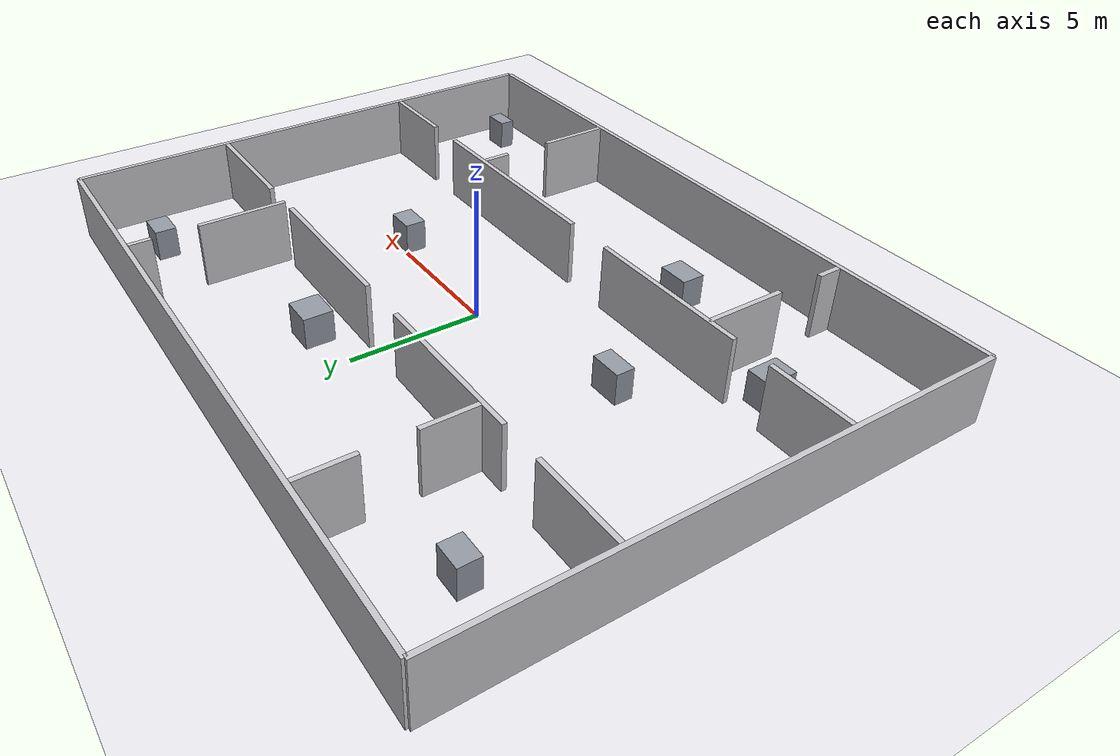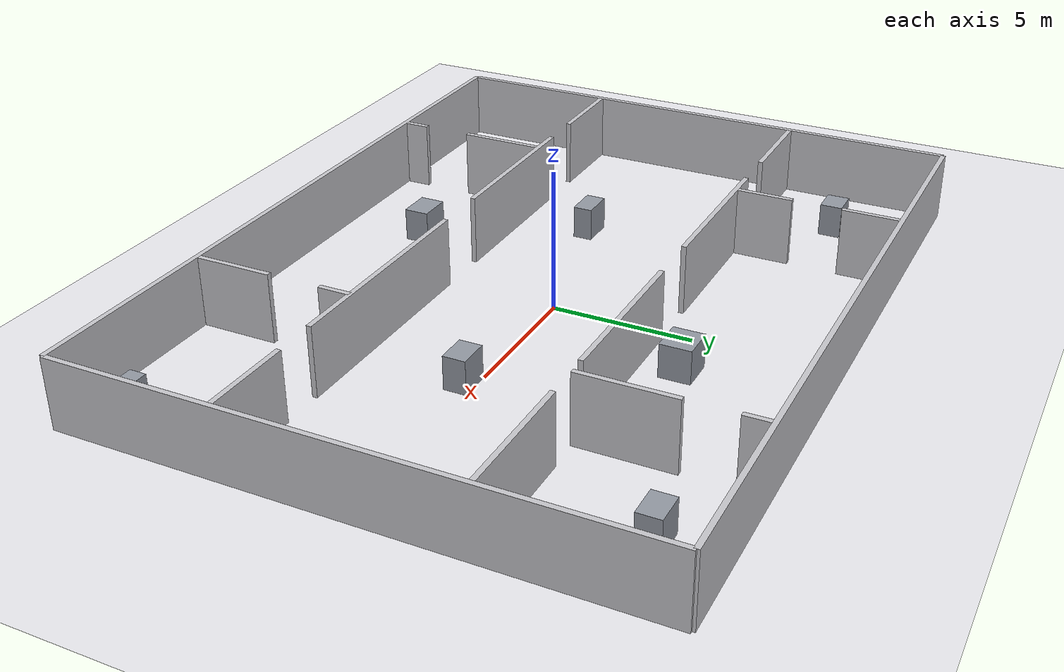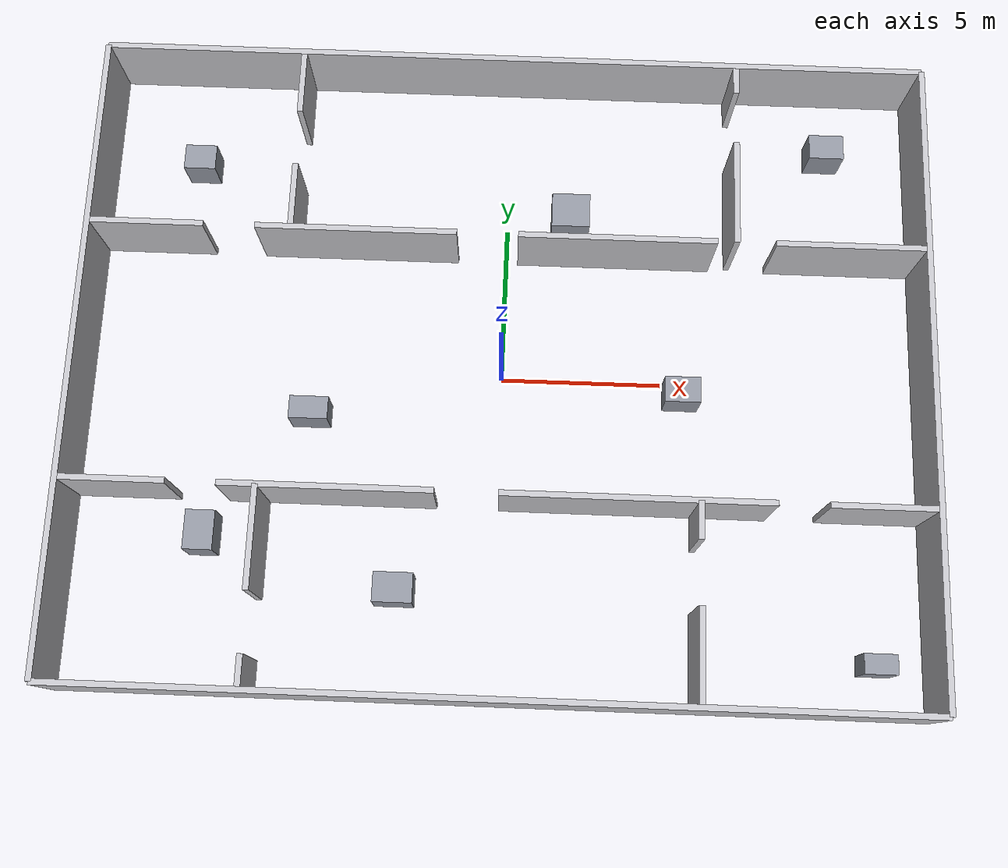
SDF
<?xml version="1.0"?>
<sdf version="1.9"><world name="new_room_world">
<plugin filename="gz-sim-physics-system" name="gz::sim::systems::Physics"/><plugin filename="gz-sim-user-commands-system" name="gz::sim::systems::UserCommands"/><plugin filename="gz-sim-scene-broadcaster-system" name="gz::sim::systems::SceneBroadcaster"/><plugin filename="gz-sim-sensors-system" name="gz::sim::systems::Sensors"><render_engine>ogre2</render_engine></plugin><plugin filename="gz-sim-imu-system" name="gz::sim::systems::Imu"/>
<physics name="new_room_realtime" type="ignored"><max_step_size>0.001</max_step_size><real_time_factor>1</real_time_factor></physics><gravity>0 0 -9.8</gravity><scene><ambient>0.85 0.85 0.87 1</ambient><background>0.68 0.68 0.71 1</background><shadows>false</shadows></scene><light name="sun" type="directional"><cast_shadows>false</cast_shadows><pose>0 0 10 0 0 0</pose><diffuse>0.95 0.95 0.95 1</diffuse><direction>-0.3 0.2 -1</direction></light>
<model name="new_room_ground"><static>true</static><link name="ground_link"><collision name="ground_collision"><geometry><plane><normal>0 0 1</normal><size>40 32</size></plane></geometry></collision><visual name="ground_visual"><geometry><plane><normal>0 0 1</normal><size>40 32</size></plane></geometry><material><ambient>0.92 0.92 0.94 1</ambient><diffuse>0.92 0.92 0.94 1</diffuse></material></visual></link></model>
<model name="mini_hospital_structure"><static>true</static><link name="structure">
<collision name="mx048_c000"><pose>0 10 1.25 0 0 0</pose><geometry><box><size>26 0.18 2.5</size></box></geometry></collision><visual name="mx048_v000"><pose>0 10 1.25 0 0 0</pose><geometry><box><size>26 0.18 2.5</size></box></geometry><material><ambient>0.78 0.78 0.80 1</ambient><diffuse>0.78 0.78 0.80 1</diffuse></material></visual>
<collision name="mx048_c001"><pose>0 -10 1.25 0 0 0</pose><geometry><box><size>26 0.18 2.5</size></box></geometry></collision><visual name="mx048_v001"><pose>0 -10 1.25 0 0 0</pose><geometry><box><size>26 0.18 2.5</size></box></geometry><material><ambient>0.78 0.78 0.80 1</ambient><diffuse>0.78 0.78 0.80 1</diffuse></material></visual>
<collision name="mx048_c002"><pose>-13 0 1.25 0 0 0</pose><geometry><box><size>0.18 20 2.5</size></box></geometry></collision><visual name="mx048_v002"><pose>-13 0 1.25 0 0 0</pose><geometry><box><size>0.18 20 2.5</size></box></geometry><material><ambient>0.78 0.78 0.80 1</ambient><diffuse>0.78 0.78 0.80 1</diffuse></material></visual>
<collision name="mx048_c003"><pose>13 0 1.25 0 0 0</pose><geometry><box><size>0.18 20 2.5</size></box></geometry></collision><visual name="mx048_v003"><pose>13 0 1.25 0 0 0</pose><geometry><box><size>0.18 20 2.5</size></box></geometry><material><ambient>0.78 0.78 0.80 1</ambient><diffuse>0.78 0.78 0.80 1</diffuse></material></visual>
<collision name="mx048_c004"><pose>-11.155 4 1.25 0 0 0</pose><geometry><box><size>3.51 0.18 2.5</size></box></geometry></collision><visual name="mx048_v004"><pose>-11.155 4 1.25 0 0 0</pose><geometry><box><size>3.51 0.18 2.5</size></box></geometry><material><ambient>0.78 0.78 0.80 1</ambient><diffuse>0.78 0.78 0.80 1</diffuse></material></visual>
<collision name="mx048_c005"><pose>-4.675 4 1.25 0 0 0</pose><geometry><box><size>6.25 0.18 2.5</size></box></geometry></collision><visual name="mx048_v005"><pose>-4.675 4 1.25 0 0 0</pose><geometry><box><size>6.25 0.18 2.5</size></box></geometry><material><ambient>0.78 0.78 0.80 1</ambient><diffuse>0.78 0.78 0.80 1</diffuse></material></visual>
<collision name="mx048_c006"><pose>3.425 4 1.25 0 0 0</pose><geometry><box><size>6.15 0.18 2.5</size></box></geometry></collision><visual name="mx048_v006"><pose>3.425 4 1.25 0 0 0</pose><geometry><box><size>6.15 0.18 2.5</size></box></geometry><material><ambient>0.78 0.78 0.80 1</ambient><diffuse>0.78 0.78 0.80 1</diffuse></material></visual>
<collision name="mx048_c007"><pose>10.605 4 1.25 0 0 0</pose><geometry><box><size>4.61 0.18 2.5</size></box></geometry></collision><visual name="mx048_v007"><pose>10.605 4 1.25 0 0 0</pose><geometry><box><size>4.61 0.18 2.5</size></box></geometry><material><ambient>0.78 0.78 0.80 1</ambient><diffuse>0.78 0.78 0.80 1</diffuse></material></visual>
<collision name="mx048_c008"><pose>-11.33 -4.1 1.25 0 0 0</pose><geometry><box><size>3.16 0.18 2.5</size></box></geometry></collision><visual name="mx048_v008"><pose>-11.33 -4.1 1.25 0 0 0</pose><geometry><box><size>3.16 0.18 2.5</size></box></geometry><material><ambient>0.78 0.78 0.80 1</ambient><diffuse>0.78 0.78 0.80 1</diffuse></material></visual>
<collision name="mx048_c009"><pose>-5.05 -4.1 1.25 0 0 0</pose><geometry><box><size>6.4 0.18 2.5</size></box></geometry></collision><visual name="mx048_v009"><pose>-5.05 -4.1 1.25 0 0 0</pose><geometry><box><size>6.4 0.18 2.5</size></box></geometry><material><ambient>0.78 0.78 0.80 1</ambient><diffuse>0.78 0.78 0.80 1</diffuse></material></visual>
<collision name="mx048_c010"><pose>4.15 -4.1 1.25 0 0 0</pose><geometry><box><size>8.2 0.18 2.5</size></box></geometry></collision><visual name="mx048_v010"><pose>4.15 -4.1 1.25 0 0 0</pose><geometry><box><size>8.2 0.18 2.5</size></box></geometry><material><ambient>0.78 0.78 0.80 1</ambient><diffuse>0.78 0.78 0.80 1</diffuse></material></visual>
<collision name="mx048_c011"><pose>11.33 -4.1 1.25 0 0 0</pose><geometry><box><size>3.16 0.18 2.5</size></box></geometry></collision><visual name="mx048_v011"><pose>11.33 -4.1 1.25 0 0 0</pose><geometry><box><size>3.16 0.18 2.5</size></box></geometry><material><ambient>0.78 0.78 0.80 1</ambient><diffuse>0.78 0.78 0.80 1</diffuse></material></visual>
<collision name="mx048_c012"><pose>-6.7 5.05 1.25 0 0 0</pose><geometry><box><size>0.18 2.1 2.5</size></box></geometry></collision><visual name="mx048_v012"><pose>-6.7 5.05 1.25 0 0 0</pose><geometry><box><size>0.18 2.1 2.5</size></box></geometry><material><ambient>0.78 0.78 0.80 1</ambient><diffuse>0.78 0.78 0.80 1</diffuse></material></visual>
<collision name="mx048_c013"><pose>-6.7 8.905 1.25 0 0 0</pose><geometry><box><size>0.18 2.01 2.5</size></box></geometry></collision><visual name="mx048_v013"><pose>-6.7 8.905 1.25 0 0 0</pose><geometry><box><size>0.18 2.01 2.5</size></box></geometry><material><ambient>0.78 0.78 0.80 1</ambient><diffuse>0.78 0.78 0.80 1</diffuse></material></visual>
<collision name="mx048_c014"><pose>7.1 5.675 1.25 0 0 0</pose><geometry><box><size>0.18 3.35 2.5</size></box></geometry></collision><visual name="mx048_v014"><pose>7.1 5.675 1.25 0 0 0</pose><geometry><box><size>0.18 3.35 2.5</size></box></geometry><material><ambient>0.78 0.78 0.80 1</ambient><diffuse>0.78 0.78 0.80 1</diffuse></material></visual>
<collision name="mx048_c015"><pose>7.1 9.48 1.25 0 0 0</pose><geometry><box><size>0.18 0.86 2.5</size></box></geometry></collision><visual name="mx048_v015"><pose>7.1 9.48 1.25 0 0 0</pose><geometry><box><size>0.18 0.86 2.5</size></box></geometry><material><ambient>0.78 0.78 0.80 1</ambient><diffuse>0.78 0.78 0.80 1</diffuse></material></visual>
<collision name="mx048_c016"><pose>-7.1 -9.455 1.25 0 0 0</pose><geometry><box><size>0.18 0.91 2.5</size></box></geometry></collision><visual name="mx048_v016"><pose>-7.1 -9.455 1.25 0 0 0</pose><geometry><box><size>0.18 0.91 2.5</size></box></geometry><material><ambient>0.78 0.78 0.80 1</ambient><diffuse>0.78 0.78 0.80 1</diffuse></material></visual>
<collision name="mx048_c017"><pose>-7.1 -5.65 1.25 0 0 0</pose><geometry><box><size>0.18 3.1 2.5</size></box></geometry></collision><visual name="mx048_v017"><pose>-7.1 -5.65 1.25 0 0 0</pose><geometry><box><size>0.18 3.1 2.5</size></box></geometry><material><ambient>0.78 0.78 0.80 1</ambient><diffuse>0.78 0.78 0.80 1</diffuse></material></visual>
<collision name="mx048_c018"><pose>6 -8.53 1.25 0 0 0</pose><geometry><box><size>0.18 2.76 2.5</size></box></geometry></collision><visual name="mx048_v018"><pose>6 -8.53 1.25 0 0 0</pose><geometry><box><size>0.18 2.76 2.5</size></box></geometry><material><ambient>0.78 0.78 0.80 1</ambient><diffuse>0.78 0.78 0.80 1</diffuse></material></visual>
<collision name="mx048_c019"><pose>6 -4.675 1.25 0 0 0</pose><geometry><box><size>0.18 1.15 2.5</size></box></geometry></collision><visual name="mx048_v019"><pose>6 -4.675 1.25 0 0 0</pose><geometry><box><size>0.18 1.15 2.5</size></box></geometry><material><ambient>0.78 0.78 0.80 1</ambient><diffuse>0.78 0.78 0.80 1</diffuse></material></visual>
<collision name="mx048_c020"><pose>-10 6.8 0.6 0 0 0</pose><geometry><box><size>1 0.8 1.2</size></box></geometry></collision><visual name="mx048_v020"><pose>-10 6.8 0.6 0 0 0</pose><geometry><box><size>1 0.8 1.2</size></box></geometry><material><ambient>0.58 0.60 0.64 1</ambient><diffuse>0.58 0.60 0.64 1</diffuse></material></visual>
<collision name="mx048_c021"><pose>2 5.4 0.6 0 0 0</pose><geometry><box><size>1.2 1.1 1.2</size></box></geometry></collision><visual name="mx048_v021"><pose>2 5.4 0.6 0 0 0</pose><geometry><box><size>1.2 1.1 1.2</size></box></geometry><material><ambient>0.58 0.60 0.64 1</ambient><diffuse>0.58 0.60 0.64 1</diffuse></material></visual>
<collision name="mx048_c022"><pose>10.2 7.9 0.6 0 0 0</pose><geometry><box><size>1.1 0.8 1.2</size></box></geometry></collision><visual name="mx048_v022"><pose>10.2 7.9 0.6 0 0 0</pose><geometry><box><size>1.1 0.8 1.2</size></box></geometry><material><ambient>0.58 0.60 0.64 1</ambient><diffuse>0.58 0.60 0.64 1</diffuse></material></visual>
<collision name="mx048_c023"><pose>-8.9 -5.3 0.6 0 0 0</pose><geometry><box><size>0.9 1.2 1.2</size></box></geometry></collision><visual name="mx048_v023"><pose>-8.9 -5.3 0.6 0 0 0</pose><geometry><box><size>0.9 1.2 1.2</size></box></geometry><material><ambient>0.58 0.60 0.64 1</ambient><diffuse>0.58 0.60 0.64 1</diffuse></material></visual>
<collision name="mx048_c024"><pose>-3 -6.8 0.6 0 0 0</pose><geometry><box><size>1.2 0.9 1.2</size></box></geometry></collision><visual name="mx048_v024"><pose>-3 -6.8 0.6 0 0 0</pose><geometry><box><size>1.2 0.9 1.2</size></box></geometry><material><ambient>0.58 0.60 0.64 1</ambient><diffuse>0.58 0.60 0.64 1</diffuse></material></visual>
<collision name="mx048_c025"><pose>11.4 -8.5 0.6 0 0 0</pose><geometry><box><size>1 0.6 1.2</size></box></geometry></collision><visual name="mx048_v025"><pose>11.4 -8.5 0.6 0 0 0</pose><geometry><box><size>1 0.6 1.2</size></box></geometry><material><ambient>0.58 0.60 0.64 1</ambient><diffuse>0.58 0.60 0.64 1</diffuse></material></visual>
<collision name="mx048_c026"><pose>-5.9 -1.4 0.6 0 0 0</pose><geometry><box><size>1.2 0.7 1.2</size></box></geometry></collision><visual name="mx048_v026"><pose>-5.9 -1.4 0.6 0 0 0</pose><geometry><box><size>1.2 0.7 1.2</size></box></geometry><material><ambient>0.58 0.60 0.64 1</ambient><diffuse>0.58 0.60 0.64 1</diffuse></material></visual>
<collision name="mx048_c027"><pose>5.6 -0.4 0.6 0 0 0</pose><geometry><box><size>1.1 0.8 1.2</size></box></geometry></collision><visual name="mx048_v027"><pose>5.6 -0.4 0.6 0 0 0</pose><geometry><box><size>1.1 0.8 1.2</size></box></geometry><material><ambient>0.58 0.60 0.64 1</ambient><diffuse>0.58 0.60 0.64 1</diffuse></material></visual>
</link></model></world></sdf>
